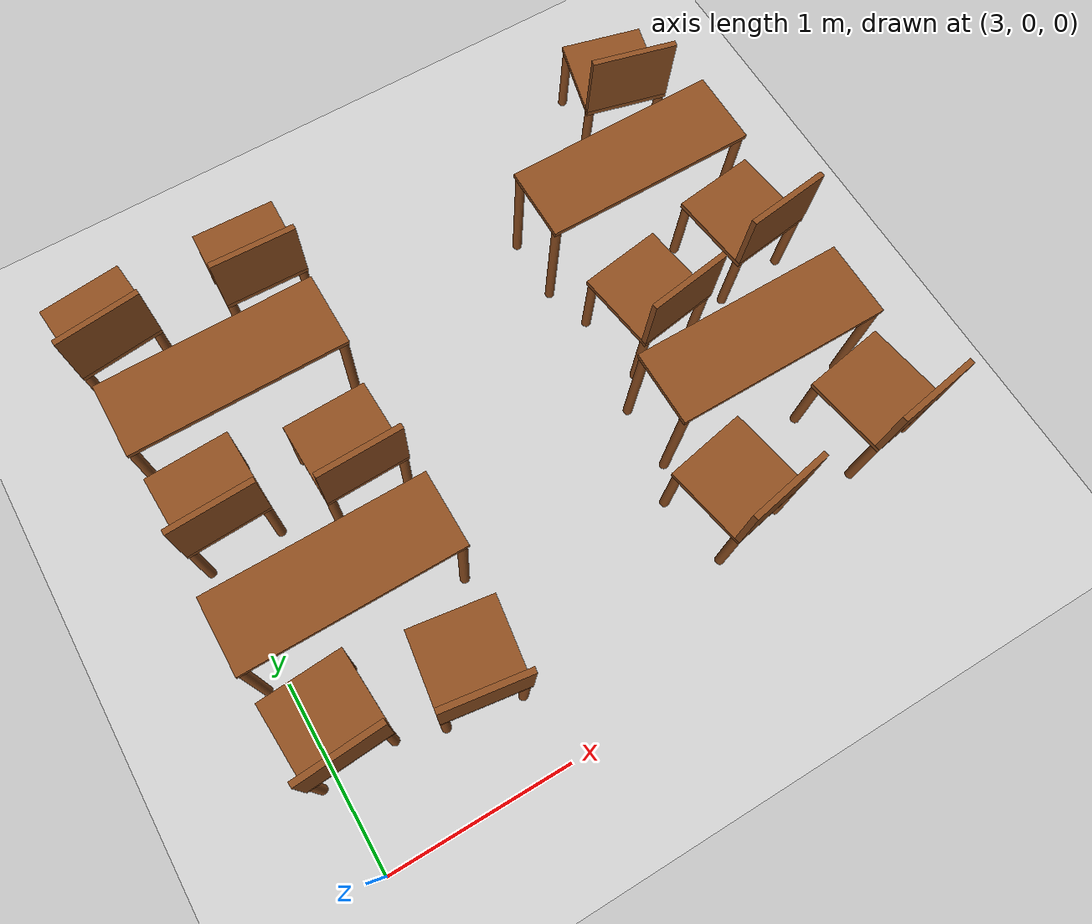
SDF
<sdf version="1.6">
 <world name="lecture_hall_real">
  <include><uri>model://ground_plane</uri></include>
  <include><uri>model://sun</uri></include>
  <model name="chair_3_3_1">
   <static>true</static>
   <pose>3.022 2.987 0 0 0 0.106</pose>
   <link name="link">
    <collision name="c_leg0">
     <pose>-0.200 -0.200 0.225 0 0 0</pose>
     <geometry><cylinder><radius>0.025</radius><length>0.450</length></cylinder></geometry>
    </collision>
    <visual name="v_leg0">
     <pose>-0.200 -0.200 0.225 0 0 0</pose>
     <geometry><cylinder><radius>0.025</radius><length>0.450</length></cylinder></geometry>
     <material><ambient>0.45 0.25 0.1 1</ambient><diffuse>0.55 0.3 0.12 1</diffuse></material>
    </visual>
    <collision name="c_leg1">
     <pose>-0.200 0.200 0.225 0 0 0</pose>
     <geometry><cylinder><radius>0.025</radius><length>0.450</length></cylinder></geometry>
    </collision>
    <visual name="v_leg1">
     <pose>-0.200 0.200 0.225 0 0 0</pose>
     <geometry><cylinder><radius>0.025</radius><length>0.450</length></cylinder></geometry>
     <material><ambient>0.45 0.25 0.1 1</ambient><diffuse>0.55 0.3 0.12 1</diffuse></material>
    </visual>
    <collision name="c_leg2">
     <pose>0.200 -0.200 0.225 0 0 0</pose>
     <geometry><cylinder><radius>0.025</radius><length>0.450</length></cylinder></geometry>
    </collision>
    <visual name="v_leg2">
     <pose>0.200 -0.200 0.225 0 0 0</pose>
     <geometry><cylinder><radius>0.025</radius><length>0.450</length></cylinder></geometry>
     <material><ambient>0.45 0.25 0.1 1</ambient><diffuse>0.55 0.3 0.12 1</diffuse></material>
    </visual>
    <collision name="c_leg3">
     <pose>0.200 0.200 0.225 0 0 0</pose>
     <geometry><cylinder><radius>0.025</radius><length>0.450</length></cylinder></geometry>
    </collision>
    <visual name="v_leg3">
     <pose>0.200 0.200 0.225 0 0 0</pose>
     <geometry><cylinder><radius>0.025</radius><length>0.450</length></cylinder></geometry>
     <material><ambient>0.45 0.25 0.1 1</ambient><diffuse>0.55 0.3 0.12 1</diffuse></material>
    </visual>
    <collision name="c_seat">
     <pose>0.000 0.000 0.465 0 0 0</pose>
     <geometry><box><size>0.450 0.450 0.030</size></box></geometry>
    </collision>
    <visual name="v_seat">
     <pose>0.000 0.000 0.465 0 0 0</pose>
     <geometry><box><size>0.450 0.450 0.030</size></box></geometry>
     <material><ambient>0.45 0.25 0.1 1</ambient><diffuse>0.55 0.3 0.12 1</diffuse></material>
    </visual>
    <collision name="c_back">
     <pose>0.000 -0.210 0.680 0 0 0</pose>
     <geometry><box><size>0.450 0.030 0.400</size></box></geometry>
    </collision>
    <visual name="v_back">
     <pose>0.000 -0.210 0.680 0 0 0</pose>
     <geometry><box><size>0.450 0.030 0.400</size></box></geometry>
     <material><ambient>0.45 0.25 0.1 1</ambient><diffuse>0.55 0.3 0.12 1</diffuse></material>
    </visual>
   </link>
  </model>
  <model name="chair_3_3_2">
   <static>true</static>
   <pose>3.842 2.961 0 0 0 -0.032</pose>
   <link name="link">
    <collision name="c_leg0">
     <pose>-0.200 -0.200 0.225 0 0 0</pose>
     <geometry><cylinder><radius>0.025</radius><length>0.450</length></cylinder></geometry>
    </collision>
    <visual name="v_leg0">
     <pose>-0.200 -0.200 0.225 0 0 0</pose>
     <geometry><cylinder><radius>0.025</radius><length>0.450</length></cylinder></geometry>
     <material><ambient>0.45 0.25 0.1 1</ambient><diffuse>0.55 0.3 0.12 1</diffuse></material>
    </visual>
    <collision name="c_leg1">
     <pose>-0.200 0.200 0.225 0 0 0</pose>
     <geometry><cylinder><radius>0.025</radius><length>0.450</length></cylinder></geometry>
    </collision>
    <visual name="v_leg1">
     <pose>-0.200 0.200 0.225 0 0 0</pose>
     <geometry><cylinder><radius>0.025</radius><length>0.450</length></cylinder></geometry>
     <material><ambient>0.45 0.25 0.1 1</ambient><diffuse>0.55 0.3 0.12 1</diffuse></material>
    </visual>
    <collision name="c_leg2">
     <pose>0.200 -0.200 0.225 0 0 0</pose>
     <geometry><cylinder><radius>0.025</radius><length>0.450</length></cylinder></geometry>
    </collision>
    <visual name="v_leg2">
     <pose>0.200 -0.200 0.225 0 0 0</pose>
     <geometry><cylinder><radius>0.025</radius><length>0.450</length></cylinder></geometry>
     <material><ambient>0.45 0.25 0.1 1</ambient><diffuse>0.55 0.3 0.12 1</diffuse></material>
    </visual>
    <collision name="c_leg3">
     <pose>0.200 0.200 0.225 0 0 0</pose>
     <geometry><cylinder><radius>0.025</radius><length>0.450</length></cylinder></geometry>
    </collision>
    <visual name="v_leg3">
     <pose>0.200 0.200 0.225 0 0 0</pose>
     <geometry><cylinder><radius>0.025</radius><length>0.450</length></cylinder></geometry>
     <material><ambient>0.45 0.25 0.1 1</ambient><diffuse>0.55 0.3 0.12 1</diffuse></material>
    </visual>
    <collision name="c_seat">
     <pose>0.000 0.000 0.465 0 0 0</pose>
     <geometry><box><size>0.450 0.450 0.030</size></box></geometry>
    </collision>
    <visual name="v_seat">
     <pose>0.000 0.000 0.465 0 0 0</pose>
     <geometry><box><size>0.450 0.450 0.030</size></box></geometry>
     <material><ambient>0.45 0.25 0.1 1</ambient><diffuse>0.55 0.3 0.12 1</diffuse></material>
    </visual>
    <collision name="c_back">
     <pose>0.000 -0.210 0.680 0 0 0</pose>
     <geometry><box><size>0.450 0.030 0.400</size></box></geometry>
    </collision>
    <visual name="v_back">
     <pose>0.000 -0.210 0.680 0 0 0</pose>
     <geometry><box><size>0.450 0.030 0.400</size></box></geometry>
     <material><ambient>0.45 0.25 0.1 1</ambient><diffuse>0.55 0.3 0.12 1</diffuse></material>
    </visual>
   </link>
  </model>
  <model name="chair_3_4_2">
   <static>true</static>
   <pose>6.074 2.978 0 0 0 -0.246</pose>
   <link name="link">
    <collision name="c_leg0">
     <pose>-0.200 -0.200 0.225 0 0 0</pose>
     <geometry><cylinder><radius>0.025</radius><length>0.450</length></cylinder></geometry>
    </collision>
    <visual name="v_leg0">
     <pose>-0.200 -0.200 0.225 0 0 0</pose>
     <geometry><cylinder><radius>0.025</radius><length>0.450</length></cylinder></geometry>
     <material><ambient>0.45 0.25 0.1 1</ambient><diffuse>0.55 0.3 0.12 1</diffuse></material>
    </visual>
    <collision name="c_leg1">
     <pose>-0.200 0.200 0.225 0 0 0</pose>
     <geometry><cylinder><radius>0.025</radius><length>0.450</length></cylinder></geometry>
    </collision>
    <visual name="v_leg1">
     <pose>-0.200 0.200 0.225 0 0 0</pose>
     <geometry><cylinder><radius>0.025</radius><length>0.450</length></cylinder></geometry>
     <material><ambient>0.45 0.25 0.1 1</ambient><diffuse>0.55 0.3 0.12 1</diffuse></material>
    </visual>
    <collision name="c_leg2">
     <pose>0.200 -0.200 0.225 0 0 0</pose>
     <geometry><cylinder><radius>0.025</radius><length>0.450</length></cylinder></geometry>
    </collision>
    <visual name="v_leg2">
     <pose>0.200 -0.200 0.225 0 0 0</pose>
     <geometry><cylinder><radius>0.025</radius><length>0.450</length></cylinder></geometry>
     <material><ambient>0.45 0.25 0.1 1</ambient><diffuse>0.55 0.3 0.12 1</diffuse></material>
    </visual>
    <collision name="c_leg3">
     <pose>0.200 0.200 0.225 0 0 0</pose>
     <geometry><cylinder><radius>0.025</radius><length>0.450</length></cylinder></geometry>
    </collision>
    <visual name="v_leg3">
     <pose>0.200 0.200 0.225 0 0 0</pose>
     <geometry><cylinder><radius>0.025</radius><length>0.450</length></cylinder></geometry>
     <material><ambient>0.45 0.25 0.1 1</ambient><diffuse>0.55 0.3 0.12 1</diffuse></material>
    </visual>
    <collision name="c_seat">
     <pose>0.000 0.000 0.465 0 0 0</pose>
     <geometry><box><size>0.450 0.450 0.030</size></box></geometry>
    </collision>
    <visual name="v_seat">
     <pose>0.000 0.000 0.465 0 0 0</pose>
     <geometry><box><size>0.450 0.450 0.030</size></box></geometry>
     <material><ambient>0.45 0.25 0.1 1</ambient><diffuse>0.55 0.3 0.12 1</diffuse></material>
    </visual>
    <collision name="c_back">
     <pose>0.000 -0.210 0.680 0 0 0</pose>
     <geometry><box><size>0.450 0.030 0.400</size></box></geometry>
    </collision>
    <visual name="v_back">
     <pose>0.000 -0.210 0.680 0 0 0</pose>
     <geometry><box><size>0.450 0.030 0.400</size></box></geometry>
     <material><ambient>0.45 0.25 0.1 1</ambient><diffuse>0.55 0.3 0.12 1</diffuse></material>
    </visual>
   </link>
  </model>
  <model name="desk_4_3">
   <static>true</static>
   <pose>3.450 2.350 0 0 0 0</pose>
   <link name="link">
    <collision name="c_leg0">
     <pose>-0.550 -0.175 0.345 0 0 0</pose>
     <geometry><cylinder><radius>0.025</radius><length>0.690</length></cylinder></geometry>
    </collision>
    <visual name="v_leg0">
     <pose>-0.550 -0.175 0.345 0 0 0</pose>
     <geometry><cylinder><radius>0.025</radius><length>0.690</length></cylinder></geometry>
     <material><ambient>0.45 0.25 0.1 1</ambient><diffuse>0.55 0.3 0.12 1</diffuse></material>
    </visual>
    <collision name="c_leg1">
     <pose>-0.550 0.175 0.345 0 0 0</pose>
     <geometry><cylinder><radius>0.025</radius><length>0.690</length></cylinder></geometry>
    </collision>
    <visual name="v_leg1">
     <pose>-0.550 0.175 0.345 0 0 0</pose>
     <geometry><cylinder><radius>0.025</radius><length>0.690</length></cylinder></geometry>
     <material><ambient>0.45 0.25 0.1 1</ambient><diffuse>0.55 0.3 0.12 1</diffuse></material>
    </visual>
    <collision name="c_leg2">
     <pose>0.550 -0.175 0.345 0 0 0</pose>
     <geometry><cylinder><radius>0.025</radius><length>0.690</length></cylinder></geometry>
    </collision>
    <visual name="v_leg2">
     <pose>0.550 -0.175 0.345 0 0 0</pose>
     <geometry><cylinder><radius>0.025</radius><length>0.690</length></cylinder></geometry>
     <material><ambient>0.45 0.25 0.1 1</ambient><diffuse>0.55 0.3 0.12 1</diffuse></material>
    </visual>
    <collision name="c_leg3">
     <pose>0.550 0.175 0.345 0 0 0</pose>
     <geometry><cylinder><radius>0.025</radius><length>0.690</length></cylinder></geometry>
    </collision>
    <visual name="v_leg3">
     <pose>0.550 0.175 0.345 0 0 0</pose>
     <geometry><cylinder><radius>0.025</radius><length>0.690</length></cylinder></geometry>
     <material><ambient>0.45 0.25 0.1 1</ambient><diffuse>0.55 0.3 0.12 1</diffuse></material>
    </visual>
    <collision name="c_top">
     <pose>0.000 0.000 0.705 0 0 0</pose>
     <geometry><box><size>1.150 0.400 0.030</size></box></geometry>
    </collision>
    <visual name="v_top">
     <pose>0.000 0.000 0.705 0 0 0</pose>
     <geometry><box><size>1.150 0.400 0.030</size></box></geometry>
     <material><ambient>0.45 0.25 0.1 1</ambient><diffuse>0.55 0.3 0.12 1</diffuse></material>
    </visual>
   </link>
  </model>
  <model name="chair_4_3_1">
   <static>true</static>
   <pose>3.103 1.898 0 0 0 0.041</pose>
   <link name="link">
    <collision name="c_leg0">
     <pose>-0.200 -0.200 0.225 0 0 0</pose>
     <geometry><cylinder><radius>0.025</radius><length>0.450</length></cylinder></geometry>
    </collision>
    <visual name="v_leg0">
     <pose>-0.200 -0.200 0.225 0 0 0</pose>
     <geometry><cylinder><radius>0.025</radius><length>0.450</length></cylinder></geometry>
     <material><ambient>0.45 0.25 0.1 1</ambient><diffuse>0.55 0.3 0.12 1</diffuse></material>
    </visual>
    <collision name="c_leg1">
     <pose>-0.200 0.200 0.225 0 0 0</pose>
     <geometry><cylinder><radius>0.025</radius><length>0.450</length></cylinder></geometry>
    </collision>
    <visual name="v_leg1">
     <pose>-0.200 0.200 0.225 0 0 0</pose>
     <geometry><cylinder><radius>0.025</radius><length>0.450</length></cylinder></geometry>
     <material><ambient>0.45 0.25 0.1 1</ambient><diffuse>0.55 0.3 0.12 1</diffuse></material>
    </visual>
    <collision name="c_leg2">
     <pose>0.200 -0.200 0.225 0 0 0</pose>
     <geometry><cylinder><radius>0.025</radius><length>0.450</length></cylinder></geometry>
    </collision>
    <visual name="v_leg2">
     <pose>0.200 -0.200 0.225 0 0 0</pose>
     <geometry><cylinder><radius>0.025</radius><length>0.450</length></cylinder></geometry>
     <material><ambient>0.45 0.25 0.1 1</ambient><diffuse>0.55 0.3 0.12 1</diffuse></material>
    </visual>
    <collision name="c_leg3">
     <pose>0.200 0.200 0.225 0 0 0</pose>
     <geometry><cylinder><radius>0.025</radius><length>0.450</length></cylinder></geometry>
    </collision>
    <visual name="v_leg3">
     <pose>0.200 0.200 0.225 0 0 0</pose>
     <geometry><cylinder><radius>0.025</radius><length>0.450</length></cylinder></geometry>
     <material><ambient>0.45 0.25 0.1 1</ambient><diffuse>0.55 0.3 0.12 1</diffuse></material>
    </visual>
    <collision name="c_seat">
     <pose>0.000 0.000 0.465 0 0 0</pose>
     <geometry><box><size>0.450 0.450 0.030</size></box></geometry>
    </collision>
    <visual name="v_seat">
     <pose>0.000 0.000 0.465 0 0 0</pose>
     <geometry><box><size>0.450 0.450 0.030</size></box></geometry>
     <material><ambient>0.45 0.25 0.1 1</ambient><diffuse>0.55 0.3 0.12 1</diffuse></material>
    </visual>
    <collision name="c_back">
     <pose>0.000 -0.210 0.680 0 0 0</pose>
     <geometry><box><size>0.450 0.030 0.400</size></box></geometry>
    </collision>
    <visual name="v_back">
     <pose>0.000 -0.210 0.680 0 0 0</pose>
     <geometry><box><size>0.450 0.030 0.400</size></box></geometry>
     <material><ambient>0.45 0.25 0.1 1</ambient><diffuse>0.55 0.3 0.12 1</diffuse></material>
    </visual>
   </link>
  </model>
  <model name="chair_4_3_2">
   <static>true</static>
   <pose>3.790 1.795 0 0 0 0.025</pose>
   <link name="link">
    <collision name="c_leg0">
     <pose>-0.200 -0.200 0.225 0 0 0</pose>
     <geometry><cylinder><radius>0.025</radius><length>0.450</length></cylinder></geometry>
    </collision>
    <visual name="v_leg0">
     <pose>-0.200 -0.200 0.225 0 0 0</pose>
     <geometry><cylinder><radius>0.025</radius><length>0.450</length></cylinder></geometry>
     <material><ambient>0.45 0.25 0.1 1</ambient><diffuse>0.55 0.3 0.12 1</diffuse></material>
    </visual>
    <collision name="c_leg1">
     <pose>-0.200 0.200 0.225 0 0 0</pose>
     <geometry><cylinder><radius>0.025</radius><length>0.450</length></cylinder></geometry>
    </collision>
    <visual name="v_leg1">
     <pose>-0.200 0.200 0.225 0 0 0</pose>
     <geometry><cylinder><radius>0.025</radius><length>0.450</length></cylinder></geometry>
     <material><ambient>0.45 0.25 0.1 1</ambient><diffuse>0.55 0.3 0.12 1</diffuse></material>
    </visual>
    <collision name="c_leg2">
     <pose>0.200 -0.200 0.225 0 0 0</pose>
     <geometry><cylinder><radius>0.025</radius><length>0.450</length></cylinder></geometry>
    </collision>
    <visual name="v_leg2">
     <pose>0.200 -0.200 0.225 0 0 0</pose>
     <geometry><cylinder><radius>0.025</radius><length>0.450</length></cylinder></geometry>
     <material><ambient>0.45 0.25 0.1 1</ambient><diffuse>0.55 0.3 0.12 1</diffuse></material>
    </visual>
    <collision name="c_leg3">
     <pose>0.200 0.200 0.225 0 0 0</pose>
     <geometry><cylinder><radius>0.025</radius><length>0.450</length></cylinder></geometry>
    </collision>
    <visual name="v_leg3">
     <pose>0.200 0.200 0.225 0 0 0</pose>
     <geometry><cylinder><radius>0.025</radius><length>0.450</length></cylinder></geometry>
     <material><ambient>0.45 0.25 0.1 1</ambient><diffuse>0.55 0.3 0.12 1</diffuse></material>
    </visual>
    <collision name="c_seat">
     <pose>0.000 0.000 0.465 0 0 0</pose>
     <geometry><box><size>0.450 0.450 0.030</size></box></geometry>
    </collision>
    <visual name="v_seat">
     <pose>0.000 0.000 0.465 0 0 0</pose>
     <geometry><box><size>0.450 0.450 0.030</size></box></geometry>
     <material><ambient>0.45 0.25 0.1 1</ambient><diffuse>0.55 0.3 0.12 1</diffuse></material>
    </visual>
    <collision name="c_back">
     <pose>0.000 -0.210 0.680 0 0 0</pose>
     <geometry><box><size>0.450 0.030 0.400</size></box></geometry>
    </collision>
    <visual name="v_back">
     <pose>0.000 -0.210 0.680 0 0 0</pose>
     <geometry><box><size>0.450 0.030 0.400</size></box></geometry>
     <material><ambient>0.45 0.25 0.1 1</ambient><diffuse>0.55 0.3 0.12 1</diffuse></material>
    </visual>
   </link>
  </model>
  <model name="desk_4_4">
   <static>true</static>
   <pose>5.750 2.350 0 0 0 0</pose>
   <link name="link">
    <collision name="c_leg0">
     <pose>-0.550 -0.175 0.345 0 0 0</pose>
     <geometry><cylinder><radius>0.025</radius><length>0.690</length></cylinder></geometry>
    </collision>
    <visual name="v_leg0">
     <pose>-0.550 -0.175 0.345 0 0 0</pose>
     <geometry><cylinder><radius>0.025</radius><length>0.690</length></cylinder></geometry>
     <material><ambient>0.45 0.25 0.1 1</ambient><diffuse>0.55 0.3 0.12 1</diffuse></material>
    </visual>
    <collision name="c_leg1">
     <pose>-0.550 0.175 0.345 0 0 0</pose>
     <geometry><cylinder><radius>0.025</radius><length>0.690</length></cylinder></geometry>
    </collision>
    <visual name="v_leg1">
     <pose>-0.550 0.175 0.345 0 0 0</pose>
     <geometry><cylinder><radius>0.025</radius><length>0.690</length></cylinder></geometry>
     <material><ambient>0.45 0.25 0.1 1</ambient><diffuse>0.55 0.3 0.12 1</diffuse></material>
    </visual>
    <collision name="c_leg2">
     <pose>0.550 -0.175 0.345 0 0 0</pose>
     <geometry><cylinder><radius>0.025</radius><length>0.690</length></cylinder></geometry>
    </collision>
    <visual name="v_leg2">
     <pose>0.550 -0.175 0.345 0 0 0</pose>
     <geometry><cylinder><radius>0.025</radius><length>0.690</length></cylinder></geometry>
     <material><ambient>0.45 0.25 0.1 1</ambient><diffuse>0.55 0.3 0.12 1</diffuse></material>
    </visual>
    <collision name="c_leg3">
     <pose>0.550 0.175 0.345 0 0 0</pose>
     <geometry><cylinder><radius>0.025</radius><length>0.690</length></cylinder></geometry>
    </collision>
    <visual name="v_leg3">
     <pose>0.550 0.175 0.345 0 0 0</pose>
     <geometry><cylinder><radius>0.025</radius><length>0.690</length></cylinder></geometry>
     <material><ambient>0.45 0.25 0.1 1</ambient><diffuse>0.55 0.3 0.12 1</diffuse></material>
    </visual>
    <collision name="c_top">
     <pose>0.000 0.000 0.705 0 0 0</pose>
     <geometry><box><size>1.150 0.400 0.030</size></box></geometry>
    </collision>
    <visual name="v_top">
     <pose>0.000 0.000 0.705 0 0 0</pose>
     <geometry><box><size>1.150 0.400 0.030</size></box></geometry>
     <material><ambient>0.45 0.25 0.1 1</ambient><diffuse>0.55 0.3 0.12 1</diffuse></material>
    </visual>
   </link>
  </model>
  <model name="chair_4_4_1">
   <static>true</static>
   <pose>5.510 1.756 0 0 0 0.149</pose>
   <link name="link">
    <collision name="c_leg0">
     <pose>-0.200 -0.200 0.225 0 0 0</pose>
     <geometry><cylinder><radius>0.025</radius><length>0.450</length></cylinder></geometry>
    </collision>
    <visual name="v_leg0">
     <pose>-0.200 -0.200 0.225 0 0 0</pose>
     <geometry><cylinder><radius>0.025</radius><length>0.450</length></cylinder></geometry>
     <material><ambient>0.45 0.25 0.1 1</ambient><diffuse>0.55 0.3 0.12 1</diffuse></material>
    </visual>
    <collision name="c_leg1">
     <pose>-0.200 0.200 0.225 0 0 0</pose>
     <geometry><cylinder><radius>0.025</radius><length>0.450</length></cylinder></geometry>
    </collision>
    <visual name="v_leg1">
     <pose>-0.200 0.200 0.225 0 0 0</pose>
     <geometry><cylinder><radius>0.025</radius><length>0.450</length></cylinder></geometry>
     <material><ambient>0.45 0.25 0.1 1</ambient><diffuse>0.55 0.3 0.12 1</diffuse></material>
    </visual>
    <collision name="c_leg2">
     <pose>0.200 -0.200 0.225 0 0 0</pose>
     <geometry><cylinder><radius>0.025</radius><length>0.450</length></cylinder></geometry>
    </collision>
    <visual name="v_leg2">
     <pose>0.200 -0.200 0.225 0 0 0</pose>
     <geometry><cylinder><radius>0.025</radius><length>0.450</length></cylinder></geometry>
     <material><ambient>0.45 0.25 0.1 1</ambient><diffuse>0.55 0.3 0.12 1</diffuse></material>
    </visual>
    <collision name="c_leg3">
     <pose>0.200 0.200 0.225 0 0 0</pose>
     <geometry><cylinder><radius>0.025</radius><length>0.450</length></cylinder></geometry>
    </collision>
    <visual name="v_leg3">
     <pose>0.200 0.200 0.225 0 0 0</pose>
     <geometry><cylinder><radius>0.025</radius><length>0.450</length></cylinder></geometry>
     <material><ambient>0.45 0.25 0.1 1</ambient><diffuse>0.55 0.3 0.12 1</diffuse></material>
    </visual>
    <collision name="c_seat">
     <pose>0.000 0.000 0.465 0 0 0</pose>
     <geometry><box><size>0.450 0.450 0.030</size></box></geometry>
    </collision>
    <visual name="v_seat">
     <pose>0.000 0.000 0.465 0 0 0</pose>
     <geometry><box><size>0.450 0.450 0.030</size></box></geometry>
     <material><ambient>0.45 0.25 0.1 1</ambient><diffuse>0.55 0.3 0.12 1</diffuse></material>
    </visual>
    <collision name="c_back">
     <pose>0.000 -0.210 0.680 0 0 0</pose>
     <geometry><box><size>0.450 0.030 0.400</size></box></geometry>
    </collision>
    <visual name="v_back">
     <pose>0.000 -0.210 0.680 0 0 0</pose>
     <geometry><box><size>0.450 0.030 0.400</size></box></geometry>
     <material><ambient>0.45 0.25 0.1 1</ambient><diffuse>0.55 0.3 0.12 1</diffuse></material>
    </visual>
   </link>
  </model>
  <model name="chair_4_4_2">
   <static>true</static>
   <pose>6.177 1.888 0 0 0 0.126</pose>
   <link name="link">
    <collision name="c_leg0">
     <pose>-0.200 -0.200 0.225 0 0 0</pose>
     <geometry><cylinder><radius>0.025</radius><length>0.450</length></cylinder></geometry>
    </collision>
    <visual name="v_leg0">
     <pose>-0.200 -0.200 0.225 0 0 0</pose>
     <geometry><cylinder><radius>0.025</radius><length>0.450</length></cylinder></geometry>
     <material><ambient>0.45 0.25 0.1 1</ambient><diffuse>0.55 0.3 0.12 1</diffuse></material>
    </visual>
    <collision name="c_leg1">
     <pose>-0.200 0.200 0.225 0 0 0</pose>
     <geometry><cylinder><radius>0.025</radius><length>0.450</length></cylinder></geometry>
    </collision>
    <visual name="v_leg1">
     <pose>-0.200 0.200 0.225 0 0 0</pose>
     <geometry><cylinder><radius>0.025</radius><length>0.450</length></cylinder></geometry>
     <material><ambient>0.45 0.25 0.1 1</ambient><diffuse>0.55 0.3 0.12 1</diffuse></material>
    </visual>
    <collision name="c_leg2">
     <pose>0.200 -0.200 0.225 0 0 0</pose>
     <geometry><cylinder><radius>0.025</radius><length>0.450</length></cylinder></geometry>
    </collision>
    <visual name="v_leg2">
     <pose>0.200 -0.200 0.225 0 0 0</pose>
     <geometry><cylinder><radius>0.025</radius><length>0.450</length></cylinder></geometry>
     <material><ambient>0.45 0.25 0.1 1</ambient><diffuse>0.55 0.3 0.12 1</diffuse></material>
    </visual>
    <collision name="c_leg3">
     <pose>0.200 0.200 0.225 0 0 0</pose>
     <geometry><cylinder><radius>0.025</radius><length>0.450</length></cylinder></geometry>
    </collision>
    <visual name="v_leg3">
     <pose>0.200 0.200 0.225 0 0 0</pose>
     <geometry><cylinder><radius>0.025</radius><length>0.450</length></cylinder></geometry>
     <material><ambient>0.45 0.25 0.1 1</ambient><diffuse>0.55 0.3 0.12 1</diffuse></material>
    </visual>
    <collision name="c_seat">
     <pose>0.000 0.000 0.465 0 0 0</pose>
     <geometry><box><size>0.450 0.450 0.030</size></box></geometry>
    </collision>
    <visual name="v_seat">
     <pose>0.000 0.000 0.465 0 0 0</pose>
     <geometry><box><size>0.450 0.450 0.030</size></box></geometry>
     <material><ambient>0.45 0.25 0.1 1</ambient><diffuse>0.55 0.3 0.12 1</diffuse></material>
    </visual>
    <collision name="c_back">
     <pose>0.000 -0.210 0.680 0 0 0</pose>
     <geometry><box><size>0.450 0.030 0.400</size></box></geometry>
    </collision>
    <visual name="v_back">
     <pose>0.000 -0.210 0.680 0 0 0</pose>
     <geometry><box><size>0.450 0.030 0.400</size></box></geometry>
     <material><ambient>0.45 0.25 0.1 1</ambient><diffuse>0.55 0.3 0.12 1</diffuse></material>
    </visual>
   </link>
  </model>
  <model name="desk_5_3">
   <static>true</static>
   <pose>3.450 1.200 0 0 0 0</pose>
   <link name="link">
    <collision name="c_leg0">
     <pose>-0.550 -0.175 0.345 0 0 0</pose>
     <geometry><cylinder><radius>0.025</radius><length>0.690</length></cylinder></geometry>
    </collision>
    <visual name="v_leg0">
     <pose>-0.550 -0.175 0.345 0 0 0</pose>
     <geometry><cylinder><radius>0.025</radius><length>0.690</length></cylinder></geometry>
     <material><ambient>0.45 0.25 0.1 1</ambient><diffuse>0.55 0.3 0.12 1</diffuse></material>
    </visual>
    <collision name="c_leg1">
     <pose>-0.550 0.175 0.345 0 0 0</pose>
     <geometry><cylinder><radius>0.025</radius><length>0.690</length></cylinder></geometry>
    </collision>
    <visual name="v_leg1">
     <pose>-0.550 0.175 0.345 0 0 0</pose>
     <geometry><cylinder><radius>0.025</radius><length>0.690</length></cylinder></geometry>
     <material><ambient>0.45 0.25 0.1 1</ambient><diffuse>0.55 0.3 0.12 1</diffuse></material>
    </visual>
    <collision name="c_leg2">
     <pose>0.550 -0.175 0.345 0 0 0</pose>
     <geometry><cylinder><radius>0.025</radius><length>0.690</length></cylinder></geometry>
    </collision>
    <visual name="v_leg2">
     <pose>0.550 -0.175 0.345 0 0 0</pose>
     <geometry><cylinder><radius>0.025</radius><length>0.690</length></cylinder></geometry>
     <material><ambient>0.45 0.25 0.1 1</ambient><diffuse>0.55 0.3 0.12 1</diffuse></material>
    </visual>
    <collision name="c_leg3">
     <pose>0.550 0.175 0.345 0 0 0</pose>
     <geometry><cylinder><radius>0.025</radius><length>0.690</length></cylinder></geometry>
    </collision>
    <visual name="v_leg3">
     <pose>0.550 0.175 0.345 0 0 0</pose>
     <geometry><cylinder><radius>0.025</radius><length>0.690</length></cylinder></geometry>
     <material><ambient>0.45 0.25 0.1 1</ambient><diffuse>0.55 0.3 0.12 1</diffuse></material>
    </visual>
    <collision name="c_top">
     <pose>0.000 0.000 0.705 0 0 0</pose>
     <geometry><box><size>1.150 0.400 0.030</size></box></geometry>
    </collision>
    <visual name="v_top">
     <pose>0.000 0.000 0.705 0 0 0</pose>
     <geometry><box><size>1.150 0.400 0.030</size></box></geometry>
     <material><ambient>0.45 0.25 0.1 1</ambient><diffuse>0.55 0.3 0.12 1</diffuse></material>
    </visual>
   </link>
  </model>
  <model name="chair_5_3_1">
   <static>true</static>
   <pose>3.109 0.699 0 0 0 0.059</pose>
   <link name="link">
    <collision name="c_leg0">
     <pose>-0.200 -0.200 0.225 0 0 0</pose>
     <geometry><cylinder><radius>0.025</radius><length>0.450</length></cylinder></geometry>
    </collision>
    <visual name="v_leg0">
     <pose>-0.200 -0.200 0.225 0 0 0</pose>
     <geometry><cylinder><radius>0.025</radius><length>0.450</length></cylinder></geometry>
     <material><ambient>0.45 0.25 0.1 1</ambient><diffuse>0.55 0.3 0.12 1</diffuse></material>
    </visual>
    <collision name="c_leg1">
     <pose>-0.200 0.200 0.225 0 0 0</pose>
     <geometry><cylinder><radius>0.025</radius><length>0.450</length></cylinder></geometry>
    </collision>
    <visual name="v_leg1">
     <pose>-0.200 0.200 0.225 0 0 0</pose>
     <geometry><cylinder><radius>0.025</radius><length>0.450</length></cylinder></geometry>
     <material><ambient>0.45 0.25 0.1 1</ambient><diffuse>0.55 0.3 0.12 1</diffuse></material>
    </visual>
    <collision name="c_leg2">
     <pose>0.200 -0.200 0.225 0 0 0</pose>
     <geometry><cylinder><radius>0.025</radius><length>0.450</length></cylinder></geometry>
    </collision>
    <visual name="v_leg2">
     <pose>0.200 -0.200 0.225 0 0 0</pose>
     <geometry><cylinder><radius>0.025</radius><length>0.450</length></cylinder></geometry>
     <material><ambient>0.45 0.25 0.1 1</ambient><diffuse>0.55 0.3 0.12 1</diffuse></material>
    </visual>
    <collision name="c_leg3">
     <pose>0.200 0.200 0.225 0 0 0</pose>
     <geometry><cylinder><radius>0.025</radius><length>0.450</length></cylinder></geometry>
    </collision>
    <visual name="v_leg3">
     <pose>0.200 0.200 0.225 0 0 0</pose>
     <geometry><cylinder><radius>0.025</radius><length>0.450</length></cylinder></geometry>
     <material><ambient>0.45 0.25 0.1 1</ambient><diffuse>0.55 0.3 0.12 1</diffuse></material>
    </visual>
    <collision name="c_seat">
     <pose>0.000 0.000 0.465 0 0 0</pose>
     <geometry><box><size>0.450 0.450 0.030</size></box></geometry>
    </collision>
    <visual name="v_seat">
     <pose>0.000 0.000 0.465 0 0 0</pose>
     <geometry><box><size>0.450 0.450 0.030</size></box></geometry>
     <material><ambient>0.45 0.25 0.1 1</ambient><diffuse>0.55 0.3 0.12 1</diffuse></material>
    </visual>
    <collision name="c_back">
     <pose>0.000 -0.210 0.680 0 0 0</pose>
     <geometry><box><size>0.450 0.030 0.400</size></box></geometry>
    </collision>
    <visual name="v_back">
     <pose>0.000 -0.210 0.680 0 0 0</pose>
     <geometry><box><size>0.450 0.030 0.400</size></box></geometry>
     <material><ambient>0.45 0.25 0.1 1</ambient><diffuse>0.55 0.3 0.12 1</diffuse></material>
    </visual>
   </link>
  </model>
  <model name="chair_5_3_2">
   <static>true</static>
   <pose>3.790 0.609 0 0 0 -0.142</pose>
   <link name="link">
    <collision name="c_leg0">
     <pose>-0.200 -0.200 0.225 0 0 0</pose>
     <geometry><cylinder><radius>0.025</radius><length>0.450</length></cylinder></geometry>
    </collision>
    <visual name="v_leg0">
     <pose>-0.200 -0.200 0.225 0 0 0</pose>
     <geometry><cylinder><radius>0.025</radius><length>0.450</length></cylinder></geometry>
     <material><ambient>0.45 0.25 0.1 1</ambient><diffuse>0.55 0.3 0.12 1</diffuse></material>
    </visual>
    <collision name="c_leg1">
     <pose>-0.200 0.200 0.225 0 0 0</pose>
     <geometry><cylinder><radius>0.025</radius><length>0.450</length></cylinder></geometry>
    </collision>
    <visual name="v_leg1">
     <pose>-0.200 0.200 0.225 0 0 0</pose>
     <geometry><cylinder><radius>0.025</radius><length>0.450</length></cylinder></geometry>
     <material><ambient>0.45 0.25 0.1 1</ambient><diffuse>0.55 0.3 0.12 1</diffuse></material>
    </visual>
    <collision name="c_leg2">
     <pose>0.200 -0.200 0.225 0 0 0</pose>
     <geometry><cylinder><radius>0.025</radius><length>0.450</length></cylinder></geometry>
    </collision>
    <visual name="v_leg2">
     <pose>0.200 -0.200 0.225 0 0 0</pose>
     <geometry><cylinder><radius>0.025</radius><length>0.450</length></cylinder></geometry>
     <material><ambient>0.45 0.25 0.1 1</ambient><diffuse>0.55 0.3 0.12 1</diffuse></material>
    </visual>
    <collision name="c_leg3">
     <pose>0.200 0.200 0.225 0 0 0</pose>
     <geometry><cylinder><radius>0.025</radius><length>0.450</length></cylinder></geometry>
    </collision>
    <visual name="v_leg3">
     <pose>0.200 0.200 0.225 0 0 0</pose>
     <geometry><cylinder><radius>0.025</radius><length>0.450</length></cylinder></geometry>
     <material><ambient>0.45 0.25 0.1 1</ambient><diffuse>0.55 0.3 0.12 1</diffuse></material>
    </visual>
    <collision name="c_seat">
     <pose>0.000 0.000 0.465 0 0 0</pose>
     <geometry><box><size>0.450 0.450 0.030</size></box></geometry>
    </collision>
    <visual name="v_seat">
     <pose>0.000 0.000 0.465 0 0 0</pose>
     <geometry><box><size>0.450 0.450 0.030</size></box></geometry>
     <material><ambient>0.45 0.25 0.1 1</ambient><diffuse>0.55 0.3 0.12 1</diffuse></material>
    </visual>
    <collision name="c_back">
     <pose>0.000 -0.210 0.680 0 0 0</pose>
     <geometry><box><size>0.450 0.030 0.400</size></box></geometry>
    </collision>
    <visual name="v_back">
     <pose>0.000 -0.210 0.680 0 0 0</pose>
     <geometry><box><size>0.450 0.030 0.400</size></box></geometry>
     <material><ambient>0.45 0.25 0.1 1</ambient><diffuse>0.55 0.3 0.12 1</diffuse></material>
    </visual>
   </link>
  </model>
  <model name="desk_5_4">
   <static>true</static>
   <pose>5.750 1.200 0 0 0 0</pose>
   <link name="link">
    <collision name="c_leg0">
     <pose>-0.550 -0.175 0.345 0 0 0</pose>
     <geometry><cylinder><radius>0.025</radius><length>0.690</length></cylinder></geometry>
    </collision>
    <visual name="v_leg0">
     <pose>-0.550 -0.175 0.345 0 0 0</pose>
     <geometry><cylinder><radius>0.025</radius><length>0.690</length></cylinder></geometry>
     <material><ambient>0.45 0.25 0.1 1</ambient><diffuse>0.55 0.3 0.12 1</diffuse></material>
    </visual>
    <collision name="c_leg1">
     <pose>-0.550 0.175 0.345 0 0 0</pose>
     <geometry><cylinder><radius>0.025</radius><length>0.690</length></cylinder></geometry>
    </collision>
    <visual name="v_leg1">
     <pose>-0.550 0.175 0.345 0 0 0</pose>
     <geometry><cylinder><radius>0.025</radius><length>0.690</length></cylinder></geometry>
     <material><ambient>0.45 0.25 0.1 1</ambient><diffuse>0.55 0.3 0.12 1</diffuse></material>
    </visual>
    <collision name="c_leg2">
     <pose>0.550 -0.175 0.345 0 0 0</pose>
     <geometry><cylinder><radius>0.025</radius><length>0.690</length></cylinder></geometry>
    </collision>
    <visual name="v_leg2">
     <pose>0.550 -0.175 0.345 0 0 0</pose>
     <geometry><cylinder><radius>0.025</radius><length>0.690</length></cylinder></geometry>
     <material><ambient>0.45 0.25 0.1 1</ambient><diffuse>0.55 0.3 0.12 1</diffuse></material>
    </visual>
    <collision name="c_leg3">
     <pose>0.550 0.175 0.345 0 0 0</pose>
     <geometry><cylinder><radius>0.025</radius><length>0.690</length></cylinder></geometry>
    </collision>
    <visual name="v_leg3">
     <pose>0.550 0.175 0.345 0 0 0</pose>
     <geometry><cylinder><radius>0.025</radius><length>0.690</length></cylinder></geometry>
     <material><ambient>0.45 0.25 0.1 1</ambient><diffuse>0.55 0.3 0.12 1</diffuse></material>
    </visual>
    <collision name="c_top">
     <pose>0.000 0.000 0.705 0 0 0</pose>
     <geometry><box><size>1.150 0.400 0.030</size></box></geometry>
    </collision>
    <visual name="v_top">
     <pose>0.000 0.000 0.705 0 0 0</pose>
     <geometry><box><size>1.150 0.400 0.030</size></box></geometry>
     <material><ambient>0.45 0.25 0.1 1</ambient><diffuse>0.55 0.3 0.12 1</diffuse></material>
    </visual>
   </link>
  </model>
  <model name="chair_5_4_1">
   <static>true</static>
   <pose>5.323 0.693 0 0 0 0.189</pose>
   <link name="link">
    <collision name="c_leg0">
     <pose>-0.200 -0.200 0.225 0 0 0</pose>
     <geometry><cylinder><radius>0.025</radius><length>0.450</length></cylinder></geometry>
    </collision>
    <visual name="v_leg0">
     <pose>-0.200 -0.200 0.225 0 0 0</pose>
     <geometry><cylinder><radius>0.025</radius><length>0.450</length></cylinder></geometry>
     <material><ambient>0.45 0.25 0.1 1</ambient><diffuse>0.55 0.3 0.12 1</diffuse></material>
    </visual>
    <collision name="c_leg1">
     <pose>-0.200 0.200 0.225 0 0 0</pose>
     <geometry><cylinder><radius>0.025</radius><length>0.450</length></cylinder></geometry>
    </collision>
    <visual name="v_leg1">
     <pose>-0.200 0.200 0.225 0 0 0</pose>
     <geometry><cylinder><radius>0.025</radius><length>0.450</length></cylinder></geometry>
     <material><ambient>0.45 0.25 0.1 1</ambient><diffuse>0.55 0.3 0.12 1</diffuse></material>
    </visual>
    <collision name="c_leg2">
     <pose>0.200 -0.200 0.225 0 0 0</pose>
     <geometry><cylinder><radius>0.025</radius><length>0.450</length></cylinder></geometry>
    </collision>
    <visual name="v_leg2">
     <pose>0.200 -0.200 0.225 0 0 0</pose>
     <geometry><cylinder><radius>0.025</radius><length>0.450</length></cylinder></geometry>
     <material><ambient>0.45 0.25 0.1 1</ambient><diffuse>0.55 0.3 0.12 1</diffuse></material>
    </visual>
    <collision name="c_leg3">
     <pose>0.200 0.200 0.225 0 0 0</pose>
     <geometry><cylinder><radius>0.025</radius><length>0.450</length></cylinder></geometry>
    </collision>
    <visual name="v_leg3">
     <pose>0.200 0.200 0.225 0 0 0</pose>
     <geometry><cylinder><radius>0.025</radius><length>0.450</length></cylinder></geometry>
     <material><ambient>0.45 0.25 0.1 1</ambient><diffuse>0.55 0.3 0.12 1</diffuse></material>
    </visual>
    <collision name="c_seat">
     <pose>0.000 0.000 0.465 0 0 0</pose>
     <geometry><box><size>0.450 0.450 0.030</size></box></geometry>
    </collision>
    <visual name="v_seat">
     <pose>0.000 0.000 0.465 0 0 0</pose>
     <geometry><box><size>0.450 0.450 0.030</size></box></geometry>
     <material><ambient>0.45 0.25 0.1 1</ambient><diffuse>0.55 0.3 0.12 1</diffuse></material>
    </visual>
    <collision name="c_back">
     <pose>0.000 -0.210 0.680 0 0 0</pose>
     <geometry><box><size>0.450 0.030 0.400</size></box></geometry>
    </collision>
    <visual name="v_back">
     <pose>0.000 -0.210 0.680 0 0 0</pose>
     <geometry><box><size>0.450 0.030 0.400</size></box></geometry>
     <material><ambient>0.45 0.25 0.1 1</ambient><diffuse>0.55 0.3 0.12 1</diffuse></material>
    </visual>
   </link>
  </model>
  <model name="chair_5_4_2">
   <static>true</static>
   <pose>6.172 0.725 0 0 0 0.166</pose>
   <link name="link">
    <collision name="c_leg0">
     <pose>-0.200 -0.200 0.225 0 0 0</pose>
     <geometry><cylinder><radius>0.025</radius><length>0.450</length></cylinder></geometry>
    </collision>
    <visual name="v_leg0">
     <pose>-0.200 -0.200 0.225 0 0 0</pose>
     <geometry><cylinder><radius>0.025</radius><length>0.450</length></cylinder></geometry>
     <material><ambient>0.45 0.25 0.1 1</ambient><diffuse>0.55 0.3 0.12 1</diffuse></material>
    </visual>
    <collision name="c_leg1">
     <pose>-0.200 0.200 0.225 0 0 0</pose>
     <geometry><cylinder><radius>0.025</radius><length>0.450</length></cylinder></geometry>
    </collision>
    <visual name="v_leg1">
     <pose>-0.200 0.200 0.225 0 0 0</pose>
     <geometry><cylinder><radius>0.025</radius><length>0.450</length></cylinder></geometry>
     <material><ambient>0.45 0.25 0.1 1</ambient><diffuse>0.55 0.3 0.12 1</diffuse></material>
    </visual>
    <collision name="c_leg2">
     <pose>0.200 -0.200 0.225 0 0 0</pose>
     <geometry><cylinder><radius>0.025</radius><length>0.450</length></cylinder></geometry>
    </collision>
    <visual name="v_leg2">
     <pose>0.200 -0.200 0.225 0 0 0</pose>
     <geometry><cylinder><radius>0.025</radius><length>0.450</length></cylinder></geometry>
     <material><ambient>0.45 0.25 0.1 1</ambient><diffuse>0.55 0.3 0.12 1</diffuse></material>
    </visual>
    <collision name="c_leg3">
     <pose>0.200 0.200 0.225 0 0 0</pose>
     <geometry><cylinder><radius>0.025</radius><length>0.450</length></cylinder></geometry>
    </collision>
    <visual name="v_leg3">
     <pose>0.200 0.200 0.225 0 0 0</pose>
     <geometry><cylinder><radius>0.025</radius><length>0.450</length></cylinder></geometry>
     <material><ambient>0.45 0.25 0.1 1</ambient><diffuse>0.55 0.3 0.12 1</diffuse></material>
    </visual>
    <collision name="c_seat">
     <pose>0.000 0.000 0.465 0 0 0</pose>
     <geometry><box><size>0.450 0.450 0.030</size></box></geometry>
    </collision>
    <visual name="v_seat">
     <pose>0.000 0.000 0.465 0 0 0</pose>
     <geometry><box><size>0.450 0.450 0.030</size></box></geometry>
     <material><ambient>0.45 0.25 0.1 1</ambient><diffuse>0.55 0.3 0.12 1</diffuse></material>
    </visual>
    <collision name="c_back">
     <pose>0.000 -0.210 0.680 0 0 0</pose>
     <geometry><box><size>0.450 0.030 0.400</size></box></geometry>
    </collision>
    <visual name="v_back">
     <pose>0.000 -0.210 0.680 0 0 0</pose>
     <geometry><box><size>0.450 0.030 0.400</size></box></geometry>
     <material><ambient>0.45 0.25 0.1 1</ambient><diffuse>0.55 0.3 0.12 1</diffuse></material>
    </visual>
   </link>
  </model>
 </world>
</sdf>
